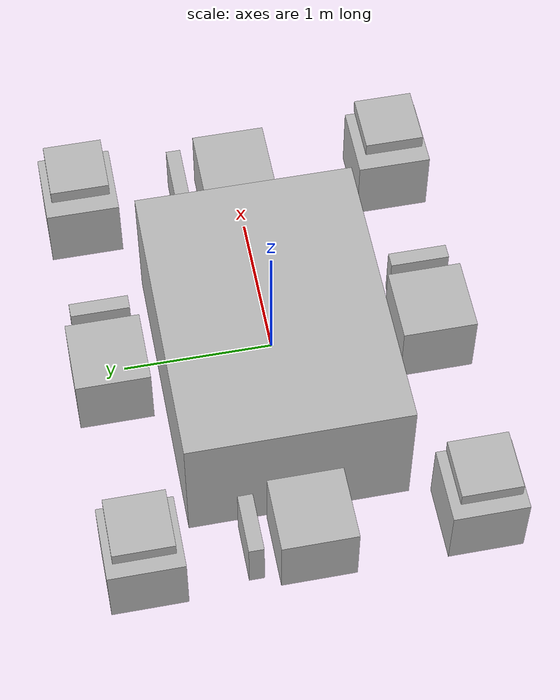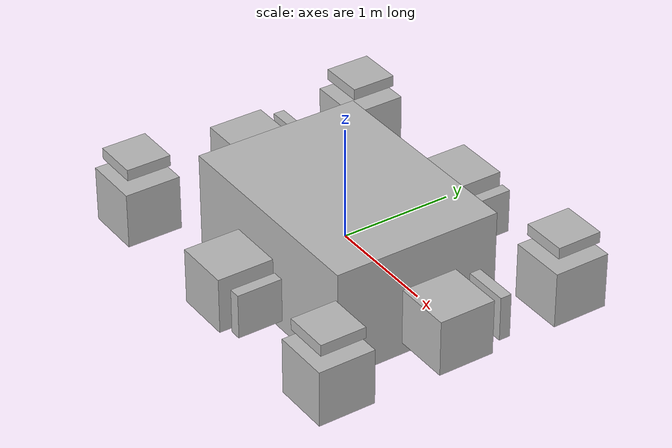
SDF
<?xml version="1.0" ?>

<sdf version="1.6">
  <!-- WORLD -->

  <world name="default">
    <plugin
      filename="ignition-gazebo-physics-system"
      name="gz::sim::systems::Physics">
    </plugin>
    <plugin
      filename="ignition-gazebo-scene-broadcaster-system"
      name="gz::sim::systems::SceneBroadcaster">
    </plugin>
    <gravity>0 0 0</gravity>

    <light type="directional" name="sun">
      <cast_shadows>true</cast_shadows>
      <pose>0 0 10 0 0 0</pose>
      <diffuse>0.8 0.8 0.8 1</diffuse>
      <specular>0.2 0.2 0.2 1</specular>
      <attenuation>
        <range>1000</range>
        <constant>0.9</constant>
        <linear>0.01</linear>
        <quadratic>0.001</quadratic>
      </attenuation>
      <direction>-0.5 0.1 -0.9</direction>
    </light>

    <model name="auv">
      <static>false</static>

      <!-- AUV CHASSIS -->

      <link name="chassis">
        <inertial>
          <mass>1.0</mass>
        </inertial>
        <collision name="collision">
          <geometry>
            <box>
              <size>2 1.5 1</size>
            </box>
          </geometry>
        </collision>
        <visual name="visual">
          <geometry>
            <box>
              <size>2 1.5 1</size>
            </box>
          </geometry>
        </visual>

        <sensor name="imu" type="imu">
        <always_on>1</always_on>
        <update_rate>100</update_rate>
        <visualize>true</visualize>
        <topic>imu</topic>
        <enable_metrics>true</enable_metrics>
        <imu>
          <linear_acceleration>
            <x>
              <noise type="gaussian">
                <mean>0</mean>
                <stddev>0.2</stddev>
              </noise>
            </x>
            <y>
              <noise type="gaussian">
                <mean>0</mean>
                <stddev>0.2</stddev>
              </noise>
            </y>
            <z>
              <noise type="gaussian">
                <mean>0</mean>
                <stddev>0.2</stddev>
              </noise>
            </z>
          </linear_acceleration>
        </imu>
      </sensor>

      <sensor name="altimeter" type="altimeter">
          <always_on>1</always_on>
          <update_rate>30</update_rate>
          <visualize>true</visualize>
          <topic>altimeter</topic>
          <enable_metrics>true</enable_metrics>
          <altimeter>
            <vertical_position>
              <noise type="gaussian">
                <mean>0</mean>
                <stddev>0.2</stddev>
              </noise>
            </vertical_position>
            <vertical_velocity>
              <noise type="gaussian">
                <mean>0</mean>
                <stddev>0.2</stddev>
              </noise>
            </vertical_velocity>
          </altimeter>
        </sensor>

      </link>

      <!-- AUV CHASSIS -->

      <!-- FRONT PROPELLER -->

      <link name="F_body">
        <pose>1.4 0 0 0 0 0</pose>
        <inertial>
          <mass>1.0</mass>
        </inertial>
        <collision name="collision">
          <geometry>
            <box>
              <size>0.5 0.5 0.5</size>
            </box>
          </geometry>
        </collision>
        <visual name="visual">
          <geometry>
            <box>
              <size>0.5 0.5 0.5</size>
            </box>
          </geometry>
        </visual>
      </link>

      <link name="F_prop">
        <pose>1.4 0.4 0 0 0 0</pose>
        <inertial>
          <mass>0.01</mass>
        </inertial>
        <collision name="collision">
          <geometry>
            <box>
              <size>0.4 0.1 0.4</size>
            </box>
          </geometry>
        </collision>
        <visual name="visual">
          <geometry>
            <box>
              <size>0.4 0.1 0.4</size>
            </box>
          </geometry>
        </visual>
      </link>

      <!-- FRONT PROPELLER -->

      <!-- BACK PROPELLER -->

      <link name="B_body">
        <pose>-1.4 0 0 0 0 0</pose>
        <inertial>
          <mass>1.0</mass>
        </inertial>
        <collision name="collision">
          <geometry>
            <box>
              <size>0.5 0.5 0.5</size>
            </box>
          </geometry>
        </collision>
        <visual name="visual">
          <geometry>
            <box>
              <size>0.5 0.5 0.5</size>
            </box>
          </geometry>
        </visual>
      </link>

      <link name="B_prop">
        <pose>-1.4 0.4 0 0 0 0</pose>
        <inertial>
          <mass>0.01</mass>
        </inertial>
        <collision name="collision">
          <geometry>
            <box>
              <size>0.4 0.1 0.4</size>
            </box>
          </geometry>
        </collision>
        <visual name="visual">
          <geometry>
            <box>
              <size>0.4 0.1 0.4</size>
            </box>
          </geometry>
        </visual>
      </link>

      <!-- BACK PROPELLER -->

      <!-- LEFT PROPELLER -->

      <link name="L_body">
        <pose>0 1.1 0 0 0 0</pose>
        <inertial>
          <mass>1.0</mass>
        </inertial>
        <collision name="collision">
          <geometry>
            <box>
              <size>0.5 0.5 0.5</size>
            </box>
          </geometry>
        </collision>
        <visual name="visual">
          <geometry>
            <box>
              <size>0.5 0.5 0.5</size>
            </box>
          </geometry>
        </visual>
      </link>

      <link name="L_prop">
        <pose>0.4 1.1 0 0 0 0</pose>
        <inertial>
          <mass>0.01</mass>
        </inertial>
        <collision name="collision">
          <geometry>
            <box>
              <size>0.1 0.4 0.4</size>
            </box>
          </geometry>
        </collision>
        <visual name="visual">
          <geometry>
            <box>
              <size>0.1 0.4 0.4</size>
            </box>
          </geometry>
        </visual>
      </link>

      <!-- LEFT PROPELLER -->

      <!-- RIGHT PROPELLER -->

      <link name="R_body">
        <pose>0 -1.1 0 0 0 0</pose>
        <inertial>
          <mass>1.0</mass>
        </inertial>
        <collision name="collision">
          <geometry>
            <box>
              <size>0.5 0.5 0.5</size>
            </box>
          </geometry>
        </collision>
        <visual name="visual">
          <geometry>
            <box>
              <size>0.5 0.5 0.5</size>
            </box>
          </geometry>
        </visual>
      </link>

      <link name="R_prop">
        <pose>0.4 -1.1 0 0 0 0</pose>
        <inertial>
          <mass>0.01</mass>
        </inertial>
        <collision name="collision">
          <geometry>
            <box>
              <size>0.1 0.4 0.4</size>
            </box>
          </geometry>
        </collision>
        <visual name="visual">
          <geometry>
            <box>
              <size>0.1 0.4 0.4</size>
            </box>
          </geometry>
        </visual>
      </link>

      <!-- RIGHT PROPELLER -->

      <!-- FRONT LEFT PROPELLER -->

      <link name="FL_body">
        <pose>1.4 1.1 0 0 0 0</pose>
        <inertial>
          <mass>1.0</mass>
        </inertial>
        <collision name="collision">
          <geometry>
            <box>
              <size>0.5 0.5 0.5</size>
            </box>
          </geometry>
        </collision>
        <visual name="visual">
          <geometry>
            <box>
              <size>0.5 0.5 0.5</size>
            </box>
          </geometry>
        </visual>
      </link>

      <link name="FL_prop">
        <pose>1.4 1.1 0.4 0 0 0</pose>
        <inertial>
          <mass>0.01</mass>
        </inertial>
        <collision name="collision">
          <geometry>
            <box>
              <size>0.4 0.4 0.1</size>
            </box>
          </geometry>
        </collision>
        <visual name="visual">
          <geometry>
            <box>
              <size>0.4 0.4 0.1</size>
            </box>
          </geometry>
        </visual>
      </link>

      <!-- FRONT LEFT PROPELLER -->

      <!-- FRONT RIGHT PROPELLER -->

      <link name="FR_body">
        <pose>1.4 -1.1 0 0 0 0</pose>
        <inertial>
          <mass>1.0</mass>
        </inertial>
        <collision name="collision">
          <geometry>
            <box>
              <size>0.5 0.5 0.5</size>
            </box>
          </geometry>
        </collision>
        <visual name="visual">
          <geometry>
            <box>
              <size>0.5 0.5 0.5</size>
            </box>
          </geometry>
        </visual>
      </link>

      <link name="FR_prop">
        <pose>1.4 -1.1 0.4 0 0 0</pose>
        <inertial>
          <mass>0.01</mass>
        </inertial>
        <collision name="collision">
          <geometry>
            <box>
              <size>0.4 0.4 0.1</size>
            </box>
          </geometry>
        </collision>
        <visual name="visual">
          <geometry>
            <box>
              <size>0.4 0.4 0.1</size>
            </box>
          </geometry>
        </visual>
      </link>

      <!-- FRONT RIGHT PROPELLER -->

      <!-- BACK LEFT PROPELLER -->

      <link name="BL_body">
        <pose>-1.4 1.1 0 0 0 0</pose>
        <inertial>
          <mass>1.0</mass>
        </inertial>
        <collision name="collision">
          <geometry>
            <box>
              <size>0.5 0.5 0.5</size>
            </box>
          </geometry>
        </collision>
        <visual name="visual">
          <geometry>
            <box>
              <size>0.5 0.5 0.5</size>
            </box>
          </geometry>
        </visual>
      </link>

      <link name="BL_prop">
        <pose>-1.4 1.1 0.4 0 0 0</pose>
        <inertial>
          <mass>0.01</mass>
        </inertial>
        <collision name="collision">
          <geometry>
            <box>
              <size>0.4 0.4 0.1</size>
            </box>
          </geometry>
        </collision>
        <visual name="visual">
          <geometry>
            <box>
              <size>0.4 0.4 0.1</size>
            </box>
          </geometry>
        </visual>
      </link>

      <!-- BACK LEFT PROPELLER -->

      <!-- BACK RIGHT PROPELLER -->

      <link name="BR_body">
        <pose>-1.4 -1.1 0 0 0 0</pose>
        <inertial>
          <mass>1.0</mass>
        </inertial>
        <collision name="collision">
          <geometry>
            <box>
              <size>0.5 0.5 0.5</size>
            </box>
          </geometry>
        </collision>
        <visual name="visual">
          <geometry>
            <box>
              <size>0.5 0.5 0.5</size>
            </box>
          </geometry>
        </visual>
      </link>

      <link name="BR_prop">
        <pose>-1.4 -1.1 0.4 0 0 0</pose>
        <inertial>
          <mass>0.01</mass>
        </inertial>
        <collision name="collision">
          <geometry>
            <box>
              <size>0.4 0.4 0.1</size>
            </box>
          </geometry>
        </collision>
        <visual name="visual">
          <geometry>
            <box>
              <size>0.4 0.4 0.1</size>
            </box>
          </geometry>
        </visual>
      </link>

      <!-- BACK RIGHT PROPELLER -->

      <!-- FRONT JOINTS -->

      <joint name="F_fixed" type="fixed">
        <parent>chassis</parent>
        <child>F_body</child>
      </joint>

      <joint name="F_joint" type="revolute">
        <parent>F_body</parent>
        <child>F_prop</child>
        <axis>
          <limit>
            <lower>-1e16</lower>
            <upper>1e16</upper>
          </limit>
          <xyz>0.0 1.0 0.0</xyz>
          <dynamics>
            <damping>0.0001</damping>
          </dynamics>
        </axis>
      </joint>

      <!-- FRONT JOINTS -->

      <!-- BACK JOINTS -->

      <joint name="B_fixed" type="fixed">
        <parent>chassis</parent>
        <child>B_body</child>
      </joint>

      <joint name="B_joint" type="revolute">
        <parent>B_body</parent>
        <child>B_prop</child>
        <axis>
          <limit>
            <lower>-1e16</lower>
            <upper>1e16</upper>
          </limit>
          <xyz>0.0 1.0 0.0</xyz>
          <dynamics>
            <damping>0.0001</damping>
          </dynamics>
        </axis>
      </joint>

      <!-- BACK JOINTS -->

      <!-- RIGHT JOINTS -->

      <joint name="R_fixed" type="fixed">
        <parent>chassis</parent>
        <child>R_body</child>
      </joint>

      <joint name="R_joint" type="revolute">
        <parent>R_body</parent>
        <child>R_prop</child>
        <axis>
          <limit>
            <lower>-1e16</lower>
            <upper>1e16</upper>
          </limit>
          <xyz>1.0 0.0 0.0</xyz>
          <dynamics>
            <damping>0.0001</damping>
          </dynamics>
        </axis>
      </joint>

      <!-- RIGHT JOINTS -->

      <!-- LEFT JOINTS -->

      <joint name="L_fixed" type="fixed">
        <parent>chassis</parent>
        <child>L_body</child>
      </joint>

      <joint name="L_joint" type="revolute">
        <parent>L_body</parent>
        <child>L_prop</child>
        <axis>
          <limit>
            <lower>-1e16</lower>
            <upper>1e16</upper>
          </limit>
          <xyz>1.0 0.0 0.0</xyz>
          <dynamics>
            <damping>0.0001</damping>
          </dynamics>
        </axis>
      </joint>

      <!-- FRONT JOINTS -->

      <!-- FRONT RIGHT JOINTS -->

      <joint name="FR_fixed" type="fixed">
        <parent>chassis</parent>
        <child>FR_body</child>
      </joint>

      <joint name="FR_joint" type="revolute">
        <parent>FR_body</parent>
        <child>FR_prop</child>
        <axis>
          <limit>
            <lower>-1e16</lower>
            <upper>1e16</upper>
          </limit>
          <xyz>0.0 0.0 1.0</xyz>
          <dynamics>
            <damping>0.0001</damping>
          </dynamics>
        </axis>
      </joint>

      <!-- FRONT RIGHT JOINTS -->

      <!-- FRONT LEFT JOINTS -->

      <joint name="FL_fixed" type="fixed">
        <parent>chassis</parent>
        <child>FL_body</child>
      </joint>

      <joint name="FL_joint" type="revolute">
        <parent>FL_body</parent>
        <child>FL_prop</child>
        <axis>
          <limit>
            <lower>-1e16</lower>
            <upper>1e16</upper>
          </limit>
          <xyz>0.0 0.0 1.0</xyz>
          <dynamics>
            <damping>0.0001</damping>
          </dynamics>
        </axis>
      </joint>

      <!-- FRONT LEFT JOINTS -->

      <!-- BACK RIGHT JOINTS -->

      <joint name="BR_fixed" type="fixed">
        <parent>chassis</parent>
        <child>BR_body</child>
      </joint>

      <joint name="BR_joint" type="revolute">
        <parent>BR_body</parent>
        <child>BR_prop</child>
        <axis>
          <limit>
            <lower>-1e16</lower>
            <upper>1e16</upper>
          </limit>
          <xyz>0.0 0.0 1.0</xyz>
          <dynamics>
            <damping>0.0001</damping>
          </dynamics>
        </axis>
      </joint>

      <!-- BACK RIGHT JOINTS -->

      <!-- BACK LEFT JOINTS -->

      <joint name="BL_fixed" type="fixed">
        <parent>chassis</parent>
        <child>BL_body</child>
      </joint>

      <joint name="BL_joint" type="revolute">
        <parent>BL_body</parent>
        <child>BL_prop</child>
        <axis>
          <limit>
            <lower>-1e16</lower>
            <upper>1e16</upper>
          </limit>
          <xyz>0.0 0.0 1.0</xyz>
          <dynamics>
            <damping>0.0001</damping>
          </dynamics>
        </axis>
      </joint>

      <!-- BACK LEFT JOINTS -->

      <!-- JOINT CONTROLLERS -->
      <plugin
        filename="ignition-gazebo-joint-controller-system"
        name="gz::sim::systems::JointController">
        <joint_name>F_joint</joint_name>
      </plugin>
      <plugin
        filename="ignition-gazebo-joint-controller-system"
        name="gz::sim::systems::JointController">
        <joint_name>B_joint</joint_name>
      </plugin>
      <plugin
        filename="ignition-gazebo-joint-controller-system"
        name="gz::sim::systems::JointController">
        <joint_name>R_joint</joint_name>
      </plugin>
      <plugin
        filename="ignition-gazebo-joint-controller-system"
        name="gz::sim::systems::JointController">
        <joint_name>L_joint</joint_name>
      </plugin>
      <plugin
        filename="ignition-gazebo-joint-controller-system"
        name="gz::sim::systems::JointController">
        <joint_name>FR_joint</joint_name>
      </plugin>
      <plugin
        filename="ignition-gazebo-joint-controller-system"
        name="gz::sim::systems::JointController">
        <joint_name>FL_joint</joint_name>
      </plugin>
      <plugin
        filename="ignition-gazebo-joint-controller-system"
        name="gz::sim::systems::JointController">
        <joint_name>BR_joint</joint_name>
      </plugin>
      <plugin
        filename="ignition-gazebo-joint-controller-system"
        name="gz::sim::systems::JointController">
        <joint_name>BL_joint</joint_name>
      </plugin>

      <!-- JOINT CONTROLLERS -->

      <!-- THRUST -->

      <plugin
        filename="ignition-gazebo-thruster-system"
        name="ignition::gazebo::systems::Thruster">
        <namespace>auv</namespace>
        <joint_name>F_joint</joint_name>
        <thrust_coefficient>5</thrust_coefficient>
        <fluid_density>1000</fluid_density>
        <propeller_diameter>0.2</propeller_diameter>
      </plugin>

      <plugin
        filename="ignition-gazebo-thruster-system"
        name="ignition::gazebo::systems::Thruster">
        <namespace>auv</namespace>
        <joint_name>B_joint</joint_name>
        <thrust_coefficient>5</thrust_coefficient>
        <fluid_density>1000</fluid_density>
        <propeller_diameter>0.2</propeller_diameter>
      </plugin>

      <plugin
        filename="ignition-gazebo-thruster-system"
        name="ignition::gazebo::systems::Thruster">
        <namespace>auv</namespace>
        <joint_name>R_joint</joint_name>
        <thrust_coefficient>5</thrust_coefficient>
        <fluid_density>1000</fluid_density>
        <propeller_diameter>0.2</propeller_diameter>
      </plugin>

      <plugin
        filename="ignition-gazebo-thruster-system"
        name="ignition::gazebo::systems::Thruster">
        <namespace>auv</namespace>
        <joint_name>L_joint</joint_name>
        <thrust_coefficient>5</thrust_coefficient>
        <fluid_density>1000</fluid_density>
        <propeller_diameter>0.2</propeller_diameter>
      </plugin>

      <plugin
        filename="ignition-gazebo-thruster-system"
        name="ignition::gazebo::systems::Thruster">
        <namespace>auv</namespace>
        <joint_name>FR_joint</joint_name>
        <thrust_coefficient>5</thrust_coefficient>
        <fluid_density>1000</fluid_density>
        <propeller_diameter>0.2</propeller_diameter>
      </plugin>

      <plugin
        filename="ignition-gazebo-thruster-system"
        name="ignition::gazebo::systems::Thruster">
        <namespace>auv</namespace>
        <joint_name>FL_joint</joint_name>
        <thrust_coefficient>5</thrust_coefficient>
        <fluid_density>1000</fluid_density>
        <propeller_diameter>0.2</propeller_diameter>
      </plugin>

      <plugin
        filename="ignition-gazebo-thruster-system"
        name="ignition::gazebo::systems::Thruster">
        <namespace>auv</namespace>
        <joint_name>BR_joint</joint_name>
        <thrust_coefficient>5</thrust_coefficient>
        <fluid_density>1000</fluid_density>
        <propeller_diameter>0.2</propeller_diameter>
      </plugin>

      <plugin
        filename="ignition-gazebo-thruster-system"
        name="ignition::gazebo::systems::Thruster">
        <namespace>auv</namespace>
        <joint_name>BL_joint</joint_name>
        <thrust_coefficient>1</thrust_coefficient>
        <fluid_density>1000</fluid_density>
        <propeller_diameter>0.2</propeller_diameter>
      </plugin>

      <!-- THRUST -->

      <!-- HYDRODYNAMICS // TODO: FIX THIS -->

      <!-- HYDRODYNAMICS -->

      <!-- SENSORS -->

      <plugin
        filename="ignition-gazebo-imu-system"
        name="ignition::gazebo::systems::Imu">
      </plugin>
      <plugin
      filename="ignition-gazebo-altimeter-system"
      name="ignition::gazebo::systems::Altimeter">
    </plugin>

    <!-- SENSORS -->

    </model>
  </world>
</sdf>
